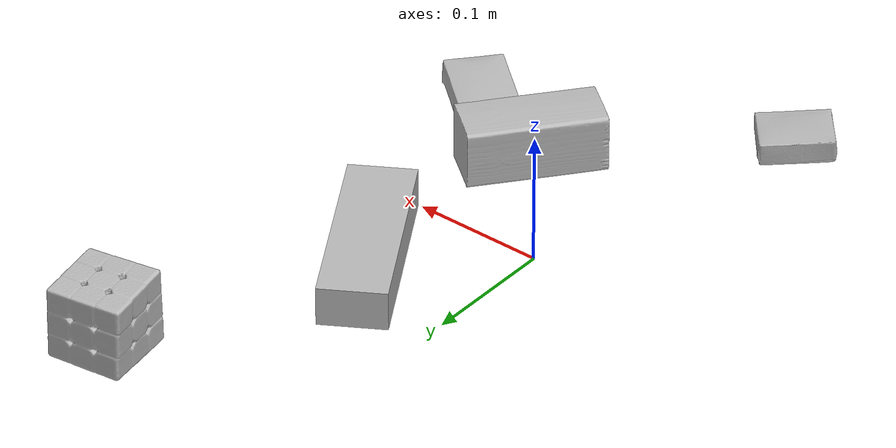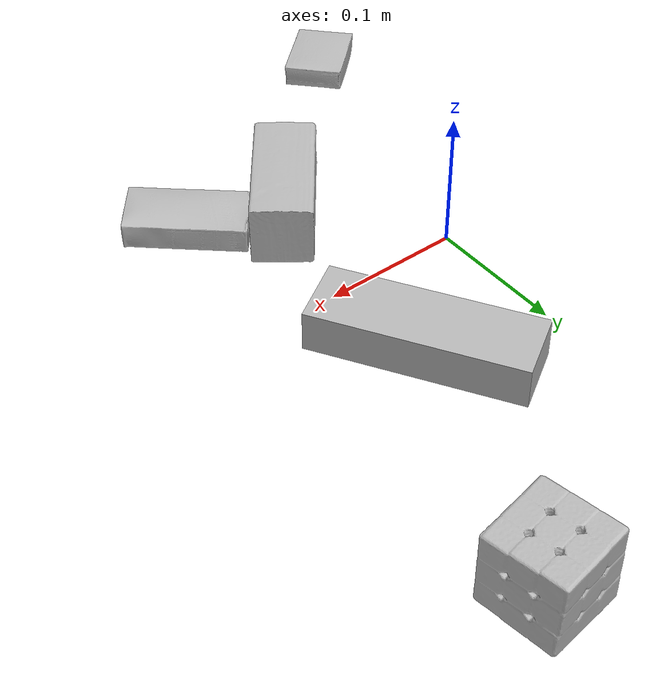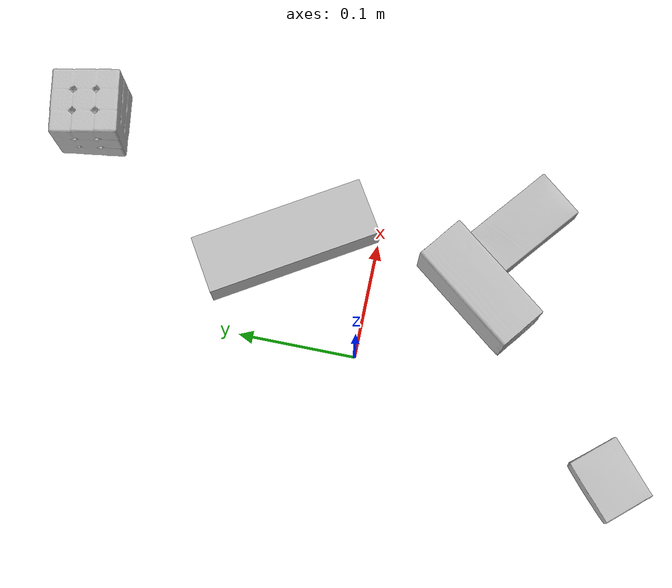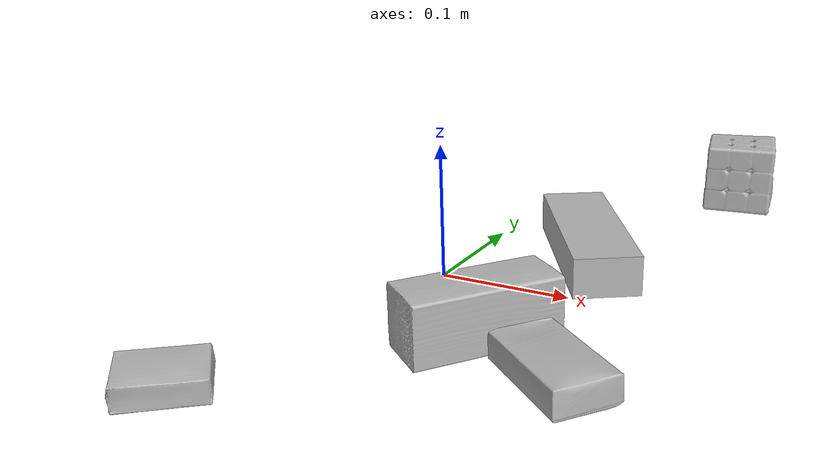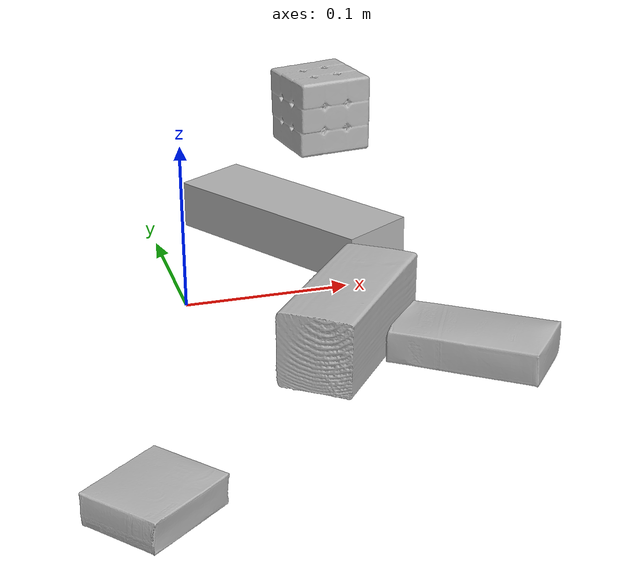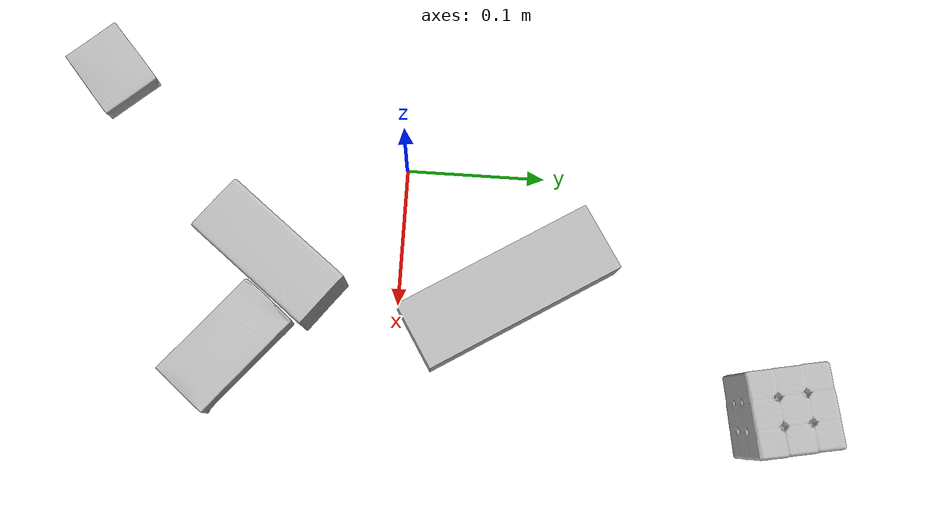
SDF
<sdf version="1.4">
  <world name="default">
    <light name="light1" type="point">
      <pose>0 0 1 0 0 0</pose>
      <diffuse>3 3 3 1</diffuse>
      <specular>3 3 3 1</specular>
    </light>
    <light name="light2" type="point">
      <pose>0 0.5 2 0 0 0</pose>
      <diffuse>1 1 1 1</diffuse>
      <specular>1 1 1 1</specular>
    </light>
    <light name="light3" type="point">
      <pose>0 0.5 2 0 0 0</pose>
      <diffuse>3 3 3 1</diffuse>
      <specular>3 3 3 1</specular>
    </light>
    <scene>
      <ambient>0.7 0.7 0.7</ambient>
    </scene>
    <model name="box1">
      <link name="link_box1">
        <collision name="default">
          <geometry>
            <mesh>
              <uri>model://wood_block/collision_meshes/collision.obj</uri>
              <scale>0.5 0.5 0.5</scale>
            </mesh>
          </geometry>
          <surface>
            <friction>
              <ode>
                <mu>0.5</mu>
                <mu2>0.5</mu2>
              </ode>
            </friction>
          <contact>
        <ode>
            <max_vel>0</max_vel>
            <min_depth>0.0001</min_depth>
            <kp>1e8</kp>
        </ode>
    </contact></surface>
        </collision>
        <visual name="default">
          <geometry>
            <mesh>
              <uri>model://wood_block/visual_meshes/visual.dae</uri>
              <scale>0.5 0.5 0.5</scale>
            </mesh>
          </geometry>
        </visual>
        <inertial>
          <mass>0.21249504387378693</mass>
          <pose>-2.906657528001233e-06 -0.00028540470520965755 0.00013204290007706732 -0.05220867383734612 -0.005192696375656893 -0.006861378651330705</pose>
          <inertia>
            <ixx>7.108762e-05</ixx>
            <iyy>0.00022456584</iyy>
            <izz>0.00022372584</izz>
            <ixy>0</ixy>
            <ixz>0</ixz>
            <iyz>0</iyz>
          </inertia>
        </inertial>
      </link>
      <pose>0.0744350478053093 -0.09003601968288422 0.02262926660478115 -0.005208525583983427 0.005718747189420027 -2.230589676136607</pose>
    </model>
    <model name="box2">
      <link name="link_box2">
        <collision name="default">
          <geometry>
            <mesh>
              <uri>model://sugar_box/collision_meshes/collision.obj</uri>
              <scale>0.5 0.5 0.5</scale>
            </mesh>
          </geometry>
          <surface>
            <friction>
              <ode>
                <mu>0.5</mu>
                <mu2>0.5</mu2>
              </ode>
            </friction>
          <contact>
        <ode>
            <max_vel>0</max_vel>
            <min_depth>0.0001</min_depth>
            <kp>1e8</kp>
        </ode>
    </contact></surface>
        </collision>
        <visual name="default">
          <geometry>
            <mesh>
              <uri>model://sugar_box/visual_meshes/visual.dae</uri>
              <scale>0.5 0.5 0.5</scale>
            </mesh>
          </geometry>
        </visual>
        <inertial>
          <mass>0.11089310050010681</mass>
          <pose>0.0005171863595023751 1.924554817378521e-05 -0.00018182402709499002 -0.0004046262999979174 0.001050663638672674 0.002615379254561693</pose>
          <inertia>
            <ixx>2.3098954e-05</ixx>
            <iyy>7.4660566e-05</iyy>
            <izz>8.9377616e-05</izz>
            <ixy>0</ixy>
            <ixz>0</ixz>
            <iyz>0</iyz>
          </inertia>
        </inertial>
      </link>
      <pose>0.13809019327163696 -0.11677572876214981 0.011399302631616592 0.0007759294769675245 -0.02343300164894396 -0.6913880860508946</pose>
    </model>
    <model name="box3">
      <link name="link_box3">
        <collision name="default">
          <geometry>
            <mesh>
              <uri>model://jenga/collision_meshes/collision.obj</uri>
              <scale>1.0 1.0 1.0</scale>
            </mesh>
          </geometry>
          <surface>
            <friction>
              <ode>
                <mu>0.5</mu>
                <mu2>0.5</mu2>
              </ode>
            </friction>
          <contact>
        <ode>
            <max_vel>0</max_vel>
            <min_depth>0.0001</min_depth>
            <kp>1e8</kp>
        </ode>
    </contact></surface>
        </collision>
        <visual name="default">
          <geometry>
            <mesh>
              <uri>model://jenga/visual_meshes/visual.dae</uri>
              <scale>1.0 1.0 1.0</scale>
            </mesh>
          </geometry>
        </visual>
        <inertial>
          <mass>0.163609579205513</mass>
          <pose>-2.502855807051674e-07 -0.0001025000965455547 -4.0923401684267446e-05 0.0 -7.34215461761844e-07 0.0</pose>
          <inertia>
            <ixx>4.527474e-05</ixx>
            <iyy>0.00030678045</iyy>
            <izz>0.0003275142</izz>
            <ixy>0</ixy>
            <ixz>0</ixz>
            <iyz>0</iyz>
          </inertia>
        </inertial>
      </link>
      <pose>0.08521237969398499 0.07682617753744125 0.014999998733401299 -1.4341591677650218e-08 6.58356858628449e-09 -1.0161089141112825</pose>
    </model>
    <model name="box4">
      <link name="link_box4">
        <collision name="default">
          <geometry>
            <mesh>
              <uri>model://rubiks_cube/collision_meshes/collision.obj</uri>
              <scale>1.0 1.0 1.0</scale>
            </mesh>
          </geometry>
          <surface>
            <friction>
              <ode>
                <mu>0.5</mu>
                <mu2>0.5</mu2>
              </ode>
            </friction>
          <contact>
        <ode>
            <max_vel>0</max_vel>
            <min_depth>0.0001</min_depth>
            <kp>1e8</kp>
        </ode>
    </contact></surface>
        </collision>
        <visual name="default">
          <geometry>
            <mesh>
              <uri>model://rubiks_cube/visual_meshes/visual.dae</uri>
              <scale>1.0 1.0 1.0</scale>
            </mesh>
          </geometry>
        </visual>
        <inertial>
          <mass>0.25540637969970703</mass>
          <pose>2.6721041649580002e-05 5.2569666877388954e-05 -7.264316082000732e-06 -0.054671713185757496 -0.09814043055608018 -0.034455401135126476</pose>
          <inertia>
            <ixx>0.00014112917</ixx>
            <iyy>0.000140471</iyy>
            <izz>0.00014229867</izz>
            <ixy>0</ixy>
            <ixz>0</ixz>
            <iyz>0</iyz>
          </inertia>
        </inertial>
      </link>
      <pose>0.15879349410533905 0.26404884457588196 0.02867899276316166 -1.6585487064739757e-06 1.9865340296008744e-07 -1.38876539000014</pose>
    </model>
    <model name="box5">
      <link name="link_box5">
        <collision name="default">
          <geometry>
            <mesh>
              <uri>model://pudding_box/collision_meshes/collision.obj</uri>
              <scale>0.5 0.5 0.5</scale>
            </mesh>
          </geometry>
          <surface>
            <friction>
              <ode>
                <mu>0.5</mu>
                <mu2>0.5</mu2>
              </ode>
            </friction>
          <contact>
        <ode>
            <max_vel>0</max_vel>
            <min_depth>0.0001</min_depth>
            <kp>1e8</kp>
        </ode>
    </contact></surface>
        </collision>
        <visual name="default">
          <geometry>
            <mesh>
              <uri>model://pudding_box/visual_meshes/visual.dae</uri>
              <scale>0.5 0.5 0.5</scale>
            </mesh>
          </geometry>
        </visual>
        <inertial>
          <mass>0.04848850890994072</mass>
          <pose>0.00024474109522998333 0.000403394311433658 -0.0002594413817860186 0.0052131017882315455 -0.0066037973363940366 0.020079830752013892</pose>
          <inertia>
            <ixx>1.370344e-05</ixx>
            <iyy>9.219772e-06</iyy>
            <izz>2.023671e-05</izz>
            <ixy>0</ixy>
            <ixz>0</ixz>
            <iyz>0</iyz>
          </inertia>
        </inertial>
      </link>
      <pose>-0.05885089933872223 -0.22300247848033905 0.009862903505563736 0.022348445375092035 -0.011391834446610306 2.2818924390583857</pose>
    </model>
  <physics type="ode">
      <max_contacts>50</max_contacts>
      <ode>
        <solver>
          <type>quick</type>
          <iters>75</iters>
        </solver>
        <constraints>
          <contact_max_correcting_vel>0</contact_max_correcting_vel>
          <contact_surface_layer>0</contact_surface_layer>
        </constraints>
      </ode>
    </physics></world>
</sdf>
